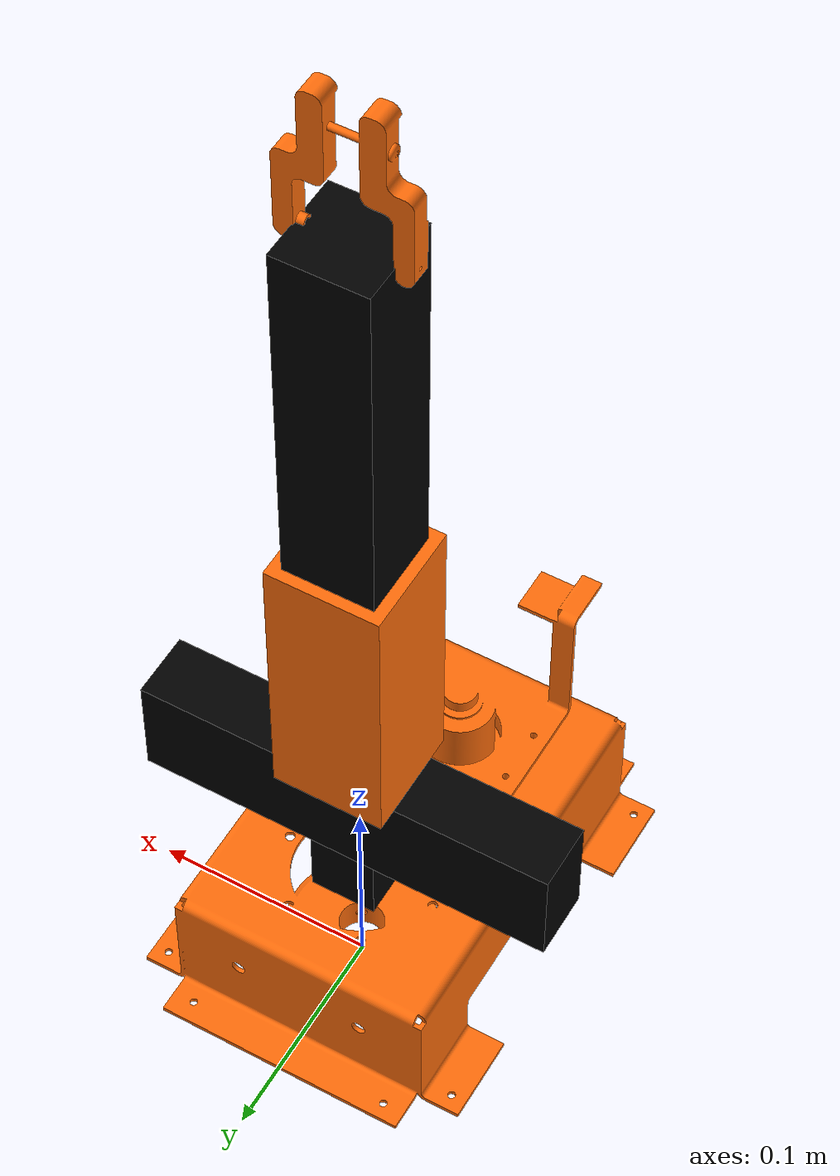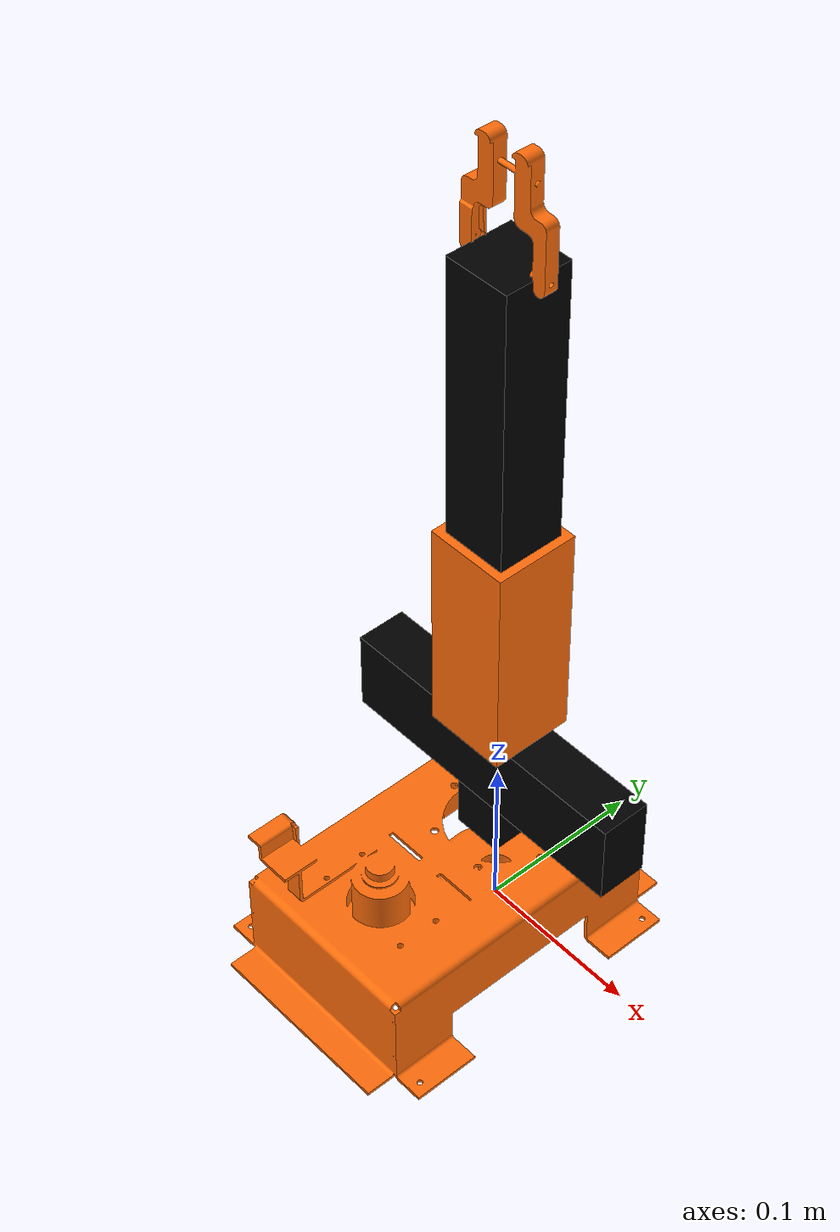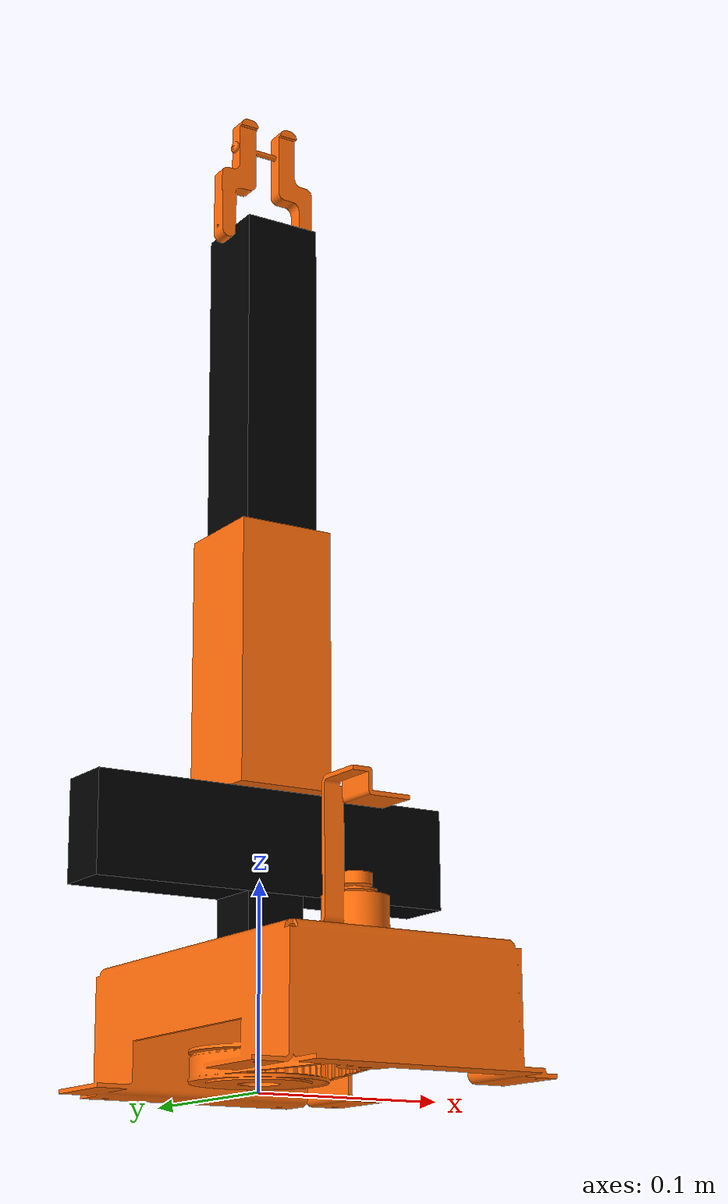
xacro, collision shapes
<?xml version="1.0"?>

<robot name="robotarm" xmlns:xacro="http://www.ros.org/wiki/xacro">

<!-- Constants for robot dimensions -->
  <xacro:property name="PI" value="3.1415926535897931"/>
  <xacro:property name="link0_mass" value="3"/>

  <!--adjusted size of link to approximate the inertia with rectangular shape-->
  <xacro:property name="link0_x" value="0.15"/>
  <xacro:property name="link0_y" value="0.2"/>
  <xacro:property name="link0_z" value="0.06"/>

  <xacro:property name="link1_mass" value="0.8"/>
  <xacro:property name="link1_x" value="0.11"/>
  <xacro:property name="link1_y" value="0.05"/>
  <xacro:property name="link1_z" value="0.08"/>

  <xacro:property name="link2_mass" value="0.405"/>
  <xacro:property name="link2_x" value="0.04"/>
  <xacro:property name="link2_y" value="0.05"/>
  <xacro:property name="link2_z" value="0.17"/>

  <xacro:property name="link3_mass" value="0.2"/>
  <xacro:property name="link3_x" value="0.02"/>
  <xacro:property name="link3_y" value="0.04"/>
  <xacro:property name="link3_z" value="0.17"/>

  <xacro:property name="link4_mass" value="0.01"/>
  <xacro:property name="link4_x" value="0.03"/>
  <xacro:property name="link4_y" value="0.01"/>
  <xacro:property name="link4_z" value="0.06"/>

  <!-- Import all Gazebo-customization elements, including Gazebo colors -->
  <!-- To run Gazebo sumulation(plugins,color in Gazebo...), this is needed -->
  <!--just written in another XML named "myrobot.gazebo", can put content together here-->
  <xacro:include filename="$(find myrobot)/urdf/myrobot.gazebo" />

  <!-- Import Rviz colors -->
  <xacro:include filename="$(find myrobot)/urdf/materials.xacro" />

<!--fixing robot to Gazebo origin-->
  <link name="world"/>

  <joint name="fixed" type="fixed">
    <parent link="world"/>
    <child link="link0"/>
  </joint>

<!--Base link of robot arm-->
  <link name="link0">

     <visual>
       <origin xyz="0 -0.037 0" rpy="0 0 ${PI}"/>
       <geometry>
        <mesh filename="package://myrobot/meshes/link00.stl" scale="0.001 0.001 0.001"/>
       </geometry>
       <material name="orange"/>
	<!--this color tag is for Rviz-->
	<!--color in gazebo is written in myrobot.gazebo-->
     </visual>

	<!--this color tag is for Rviz-->
	<!--color in gazebo is written in myrobot.gazebo-->

     <collision>
       <origin xyz="0 -0.037 0" rpy="0 0 ${PI}"/>
       <geometry>
        <mesh filename="package://myrobot/meshes/link00.stl" scale="0.001 0.001 0.001"/>
       </geometry>
     </collision>

     <inertial>
        <origin xyz="0 -0.037 ${0.06/2}" rpy="0 0 0"/>
       <mass value="${link0_mass}"/>
       <inertia
          ixx="1.0" ixy="0.0" ixz="0.0"
          iyy="1.0" iyz="0.0"
          izz="1.0"/>
     </inertial>
   </link>

   <!--joint1-->
  <joint name="joint1" type="revolute">
    <parent link="link0"/>
    <child link="link1"/>
    <origin xyz="0 0 0.06" rpy="0 0 0"/>
    <axis xyz="0 0 1"/>
    <dynamics damping="1.0" friction="1.33136"/>
    <limit effort="4.20429" lower="${-PI}" upper="${PI}" velocity="2.93215"/>
    <!--motor: JGB37-3530B gear_ratio=56 under 12v 80rpm stall=15kgf*cm-->
    <!--gear_ratio motor to j1 = 40/14-->
    <!-- effort: 0.15*9.81(N*m)*40/14-->
    <!--velo:     80*2pi/60(rad/s)/(40/14)-->
    <!--damp: after close_loop control ~1.0-->
    <!--fric: tested start volt = 3.8v, so 3.8v/12v*4.20429-->
  </joint>

 <!--rotational base-->
  <link name="link1">
<!-- origin of link1 is joint 1 -->

    <visual>
      <origin xyz="0 0 0" rpy="0 0 ${PI}"/>
      <geometry>
        <mesh filename="package://myrobot/meshes/link1.stl" scale="0.001 0.001 0.001"/>
      </geometry>
      <material name="black"/>
    </visual>

    <collision>
      <origin xyz="0 0 ${0.032/2}" rpy="0 0 0"/>
      <geometry>
      <box size="0.03 0.03 0.032"/>
      </geometry>
    </collision>

    <collision>
      <origin xyz="0 0 ${0.032+0.05/2}" rpy="0 0 0"/>
      <geometry>
      <box size="0.19 0.03 0.05"/>
      </geometry>
    </collision>

    <inertial>
      <origin xyz="0 0 ${0.082/2}" rpy="0 0 0"/>
      <mass value="${link1_mass}"/>
      <inertia
          ixx="${link1_mass / 12.0 * (0.01*0.01*2)}" ixy="0.0" ixz="0.0"
          iyy="0.0" iyz="0.0"
          izz="${link1_mass / 12.0 * (0.01*0.01 + 0.082*0.082)}"/>
    </inertial>
    <!-- set 0 if no rotation of the axis to prevent Gazebo strange behavior -->
  </link>

  <!--joint2-->
  <joint name="joint2" type="revolute">
     <parent link="link1"/>
     <child link="link2"/>
     <origin xyz=" 0 0 0.082" rpy="0 0 0"/>
     <axis xyz="1 0 0"/>
     <dynamics damping="1.0" friction="2.329875"/>
     <limit effort="7.3575" lower="${-PI}" upper="${PI}" velocity="1.675516"/>
     <!--motor: JGB37-3530B gear_ratio=56 under 12v 80rpm stall=15kg*cm-->
     <!--gear_ratio motor to j2 = 5.0-->
     <!--effort: 0.15*9.81(N*m)*5-->
     <!--velo:     80*2pi/60(rad/s)/5-->
     <!--damp: after close_loop control ~1.0-->
     <!--fric: tested start volt = 3.8v, so 3.8v/12v*7.3575-->
   </joint>

<!--link2-->
<link name="link2">

    <visual>
      <origin xyz="0 0 0" rpy="0 0 ${PI}"/>
      <geometry>
        <mesh filename="package://myrobot/meshes/link2.stl" scale="0.001 0.001 0.001"/>
      </geometry>
      <material name="orange"/>
    </visual>

   <collision>
      <origin xyz="0 0 ${0.132/2}" rpy="0 0 0"/>
      <geometry>
        <box size="0.05 0.05 0.132"/>
      </geometry>
    </collision>

    <inertial>
     <origin xyz="0 0 ${0.132/2}" rpy="0 0 0"/>
      <mass value="${link2_mass}"/>
      <inertia
          ixx="${link2_mass / 12.0 * (link2_z*link2_z + link2_y*link2_y)}" ixy="0.0" ixz="0.0"
          iyy="0.0" iyz="0.0"
          izz="${link2_mass / 12.0 * (link2_x*link2_x + link2_y*link2_y)}"/>
    </inertial>
    <!-- set 0 if no rotation of the axis to prevent Gazebo strange behavior -->
  </link>

  <!--joint3-->
<joint name="joint3" type="revolute">
     <parent link="link2"/>
     <child link="link3"/>
     <origin xyz="0 0 0.132" rpy="0 0 0"/>
     <axis xyz="1 0 0"/>
     <dynamics damping="1.0" friction="1.176032"/>
     <limit effort="3.71378564" lower="${-PI}" upper="${PI}" velocity="3.885103"/>
     <!--motor: JGB37-3530B gear_ratio=18.8 under 12v 265rpm stall=5.3kg*cm-->
     <!--gear_ratio motor to j3 = 5*(20/14)=7.142857-->
     <!--effort: 0.053*9.81(N*m)*7.142857-->
     <!--velo:     265*2pi/60(rad/s)/7.142857-->
     <!--damp: after close_loop control ~1.0-->
     <!--fric: tested start volt = 3.8v, so 3.8v/12v*3.71378564-->
   </joint>

<!--link3-->
<link name="link3">

    <visual>
      <origin xyz="0 0 0" rpy="0 0 ${PI}"/>
      <geometry>
        <mesh filename="package://myrobot/meshes/link3.stl" scale="0.001 0.001 0.001"/>
      </geometry>
      <material name="black"/>
    </visual>

    <collision>
      <origin xyz="0 0 ${0.1664/2}" rpy="0 0 0"/>
      <geometry>
        <box size="0.04 0.04 0.1664"/>
      </geometry>
    </collision>

    <inertial>
     <origin xyz="0 0 ${0.1664/2}" rpy="0 0 0"/>
      <mass value="${link3_mass}"/>
      <inertia
          ixx="${link3_mass / 12.0 * (link3_z*link3_z + link3_y*link3_y)}" ixy="0.0" ixz="0.0"
          iyy="0" iyz="0.0"
          izz="${link3_mass / 12.0 * (link3_x*link3_x + link3_y*link3_y)}"/>
    </inertial>
    <!-- set 0 if no rotation of the axis to prevent Gazebo strange behavior -->
  </link>

<!--joint4-->
   <joint name="joint4" type="revolute">
     <parent link="link3"/>
     <child link="link4"/>
     <origin xyz="0 0 0.1664" rpy="0 0 0"/>
     <axis xyz="1 0 0"/>
     <dynamics damping="1.0" friction="0.07"/>
     <limit effort="0.1962" lower="${-PI}" upper="${PI}" velocity="10.47198"/>
     <!--motor: MG90S under 5v stall=2.0kg*cm  60deg/0.1sec-->
     <!--gear_ratio motor to j4 = 1-->
     <!--effort: 2/100*9.81(N*m) = 0.1962-->
     <!--But 0.1962 performs weird in Gazebo, trial and error set 1.962-->
     <!--velo:     10.47198-->
     <!--damp:     ?-->
     <!--fric:     ?-->
   </joint>

  <!--link4-->
  <link name="link4">

    <visual>
      <origin xyz="0 0 0" rpy="0 0 ${PI}"/>
      <geometry>
        <mesh filename="package://myrobot/meshes/link4.stl" scale="0.001 0.001 0.001"/>
      </geometry>
      <material name="orange"/>
    </visual>

    <collision>
      <origin xyz="0 0 0" rpy="0 0 ${PI}"/>
      <geometry>
        <mesh filename="package://myrobot/meshes/link4.stl" scale="0.001 0.001 0.001"/>
      </geometry>
    </collision>

    <inertial>
     <origin xyz="0 0 ${0.06/2}" rpy="0 0 ${PI}"/>
      <mass value="${link4_mass}"/>
      <inertia
          ixx="${link4_mass / 12.0 * (link4_z*link4_z + link4_y*link4_y)}" ixy="0.0" ixz="0.0"
          iyy="0" iyz="0.0"
          izz="${link4_mass / 12.0 * (link4_x*link4_x + link4_y*link4_y)}"/>
    </inertial>
    <!-- set 0 if no rotation of the axis to prevent Gazebo strange behavior -->
  </link>

<transmission name="tran1">
    <type>transmission_interface/SimpleTransmission</type>
    <joint name="joint1">
      <hardwareInterface>hardware_interface/PositionJointInterface</hardwareInterface>
    </joint>
    <actuator name="motor1">
      <hardwareInterface>hardware_interface/PositionJointInterface</hardwareInterface>
      <mechanicalReduction>1</mechanicalReduction>
    </actuator>
  </transmission>

<transmission name="tran2">
    <type>transmission_interface/SimpleTransmission</type>
    <joint name="joint2">
      <hardwareInterface>hardware_interface/PositionJointInterface</hardwareInterface>
    </joint>
    <actuator name="motor2">
      <hardwareInterface>hardware_interface/PositionJointInterface</hardwareInterface>
      <mechanicalReduction>1</mechanicalReduction>
    </actuator>
  </transmission>

<transmission name="tran3">
    <type>transmission_interface/SimpleTransmission</type>
    <joint name="joint3">
      <hardwareInterface>hardware_interface/PositionJointInterface</hardwareInterface>
    </joint>
    <actuator name="motor3">
      <hardwareInterface>hardware_interface/PositionJointInterface</hardwareInterface>
      <mechanicalReduction>1</mechanicalReduction>
    </actuator>
  </transmission>

<transmission name="tran4">
    <type>transmission_interface/SimpleTransmission</type>
    <joint name="joint4">
      <hardwareInterface>hardware_interface/PositionJointInterface</hardwareInterface>
    </joint>
    <actuator name="motor4">
      <hardwareInterface>hardware_interface/PositionJointInterface</hardwareInterface>
      <mechanicalReduction>1</mechanicalReduction>
    </actuator>
  </transmission>

</robot>

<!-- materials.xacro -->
<!--note that the color description of this file is for Rviz,gazebo color description is in myrobot.gazebo-->
<robot>

  <material name="black">
    <color rgba="0.0 0.0 0.0 1.0"/>
  </material>

  <material name="blue">
    <color rgba="0.0 0.0 0.8 1.0"/>
  </material>

  <material name="green">
    <color rgba="0.0 0.8 0.0 1.0"/>
  </material>

  <material name="grey">
    <color rgba="0.2 0.2 0.2 1.0"/>
  </material>

  <material name="orange">
    <color rgba="${255/255} ${108/255} ${10/255} 1.0"/>
  </material>

  <material name="brown">
    <color rgba="${222/255} ${207/255} ${195/255} 1.0"/>
  </material>

  <material name="red">
    <color rgba="0.8 0.0 0.0 1.0"/>
  </material>

  <material name="white">
    <color rgba="1.0 1.0 1.0 1.0"/>
  </material>

</robot>
